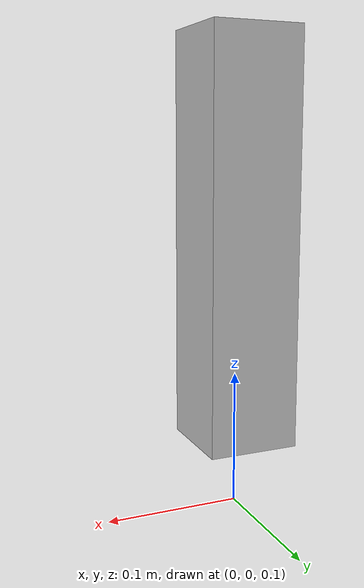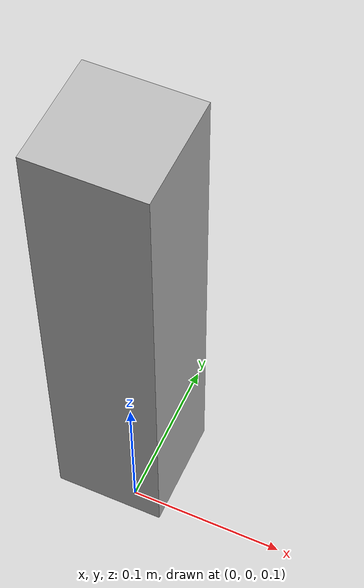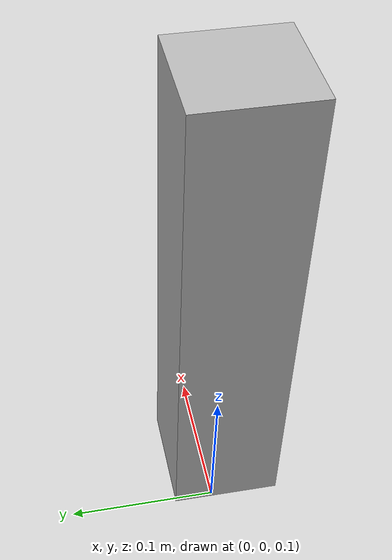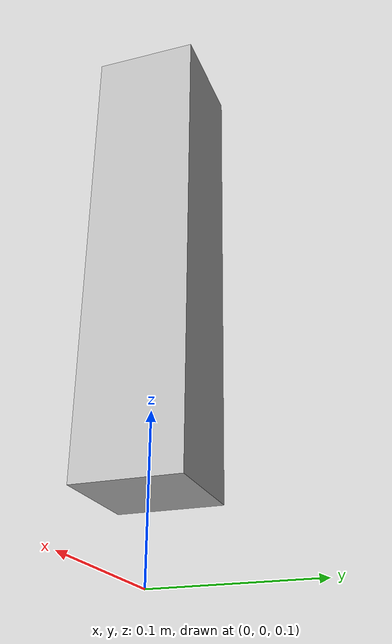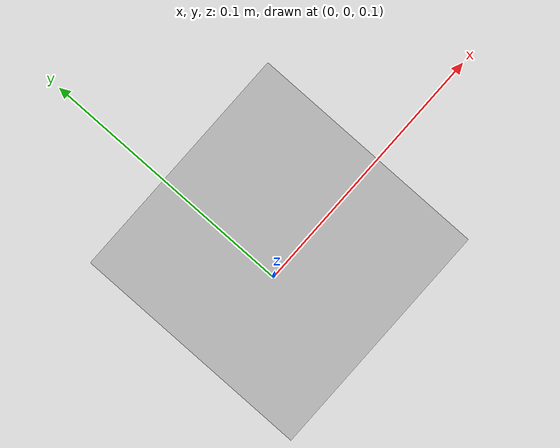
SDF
<?xml version="1.0"?>
<sdf version="1.4">
    <model name="riser">
        <link name="arm">
            <pose>0.0 0.0 0.3 0 0 0</pose>
            <inertial>
                <pose>0 0 -0.17 0 0 0</pose>
                <inertia>
                    <ixx>0.01</ixx>
                    <ixy>0</ixy>
                    <ixz>0</ixz>
                    <iyy>0.01</iyy>
                    <iyz>0</iyz>
                    <izz>0.01</izz>
                </inertia>
                <mass>10.0</mass>
            </inertial>
            <collision name="collision">
                <geometry>
                    <box>
                        <size>0.067 0.067 0.3</size>
                    </box>
                </geometry>
            </collision>
            <visual name="visual">
                <geometry>
                    <box>
                        <size>0.067 0.067 0.3</size>
                    </box>
                </geometry>
                <material>
                    <script>Gazebo/Purple</script>
                </material>
            </visual>
        </link>
  </model>
 </sdf>
